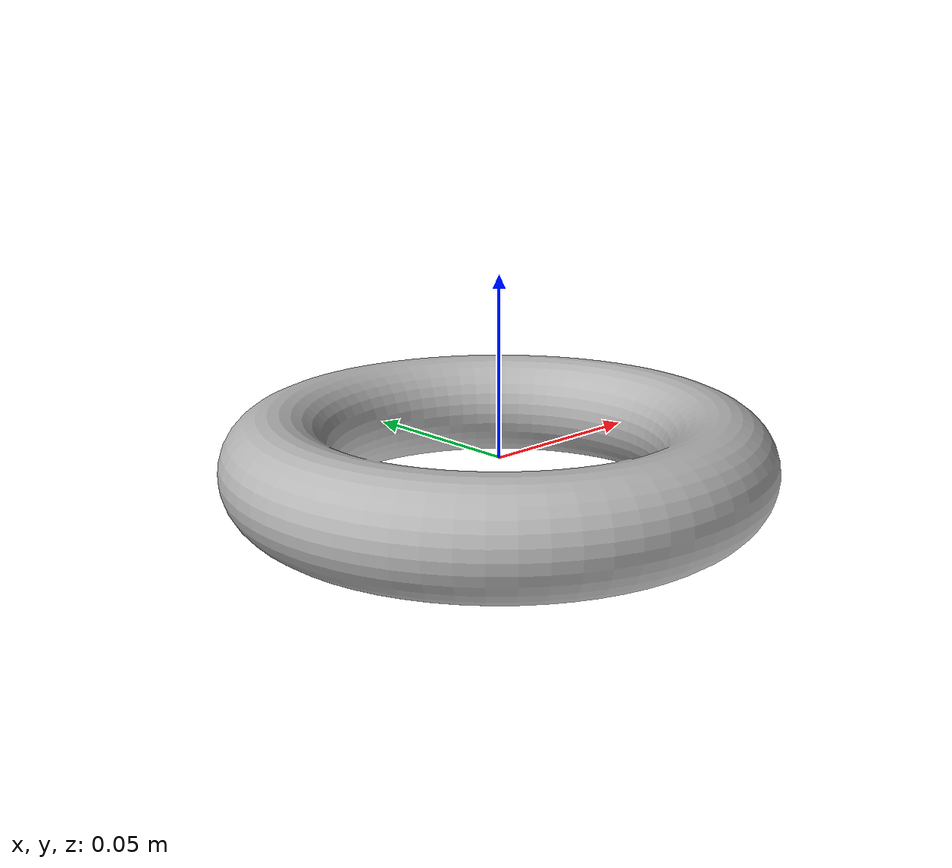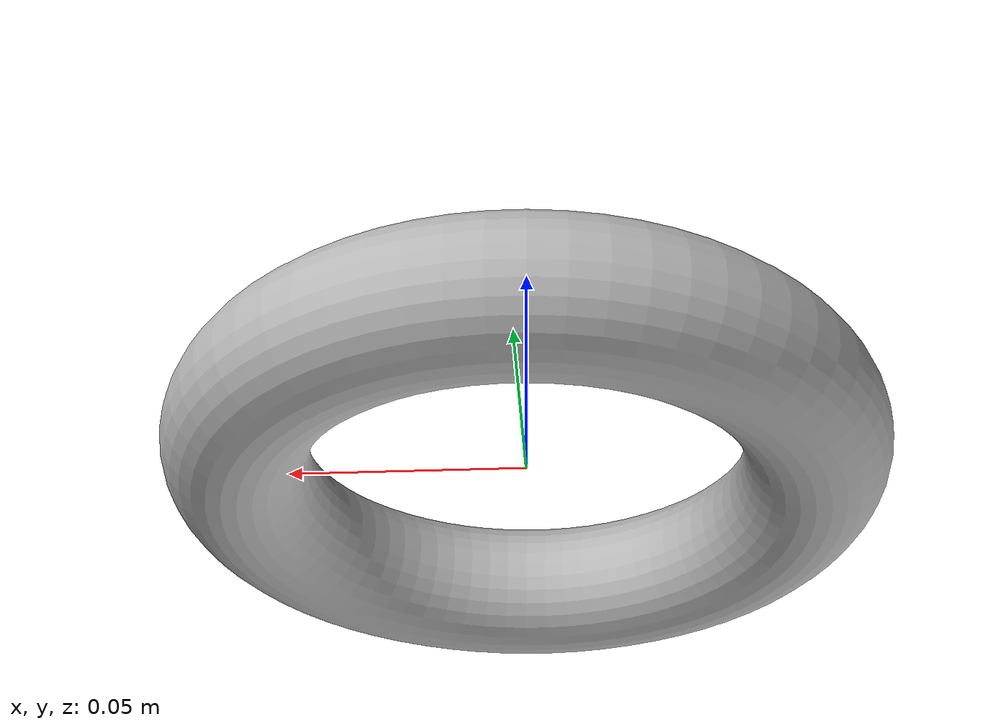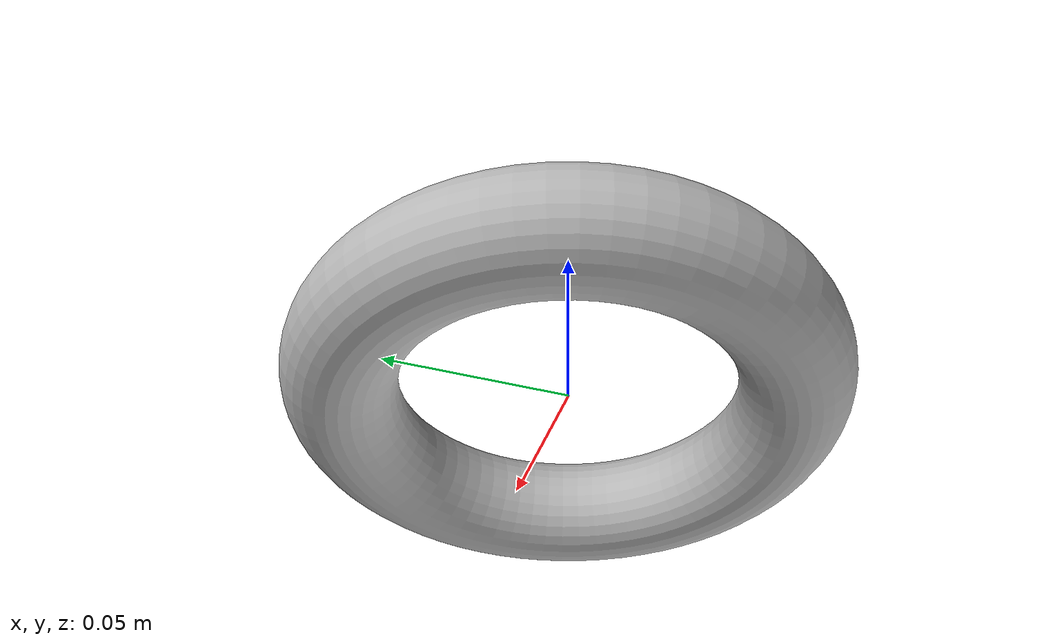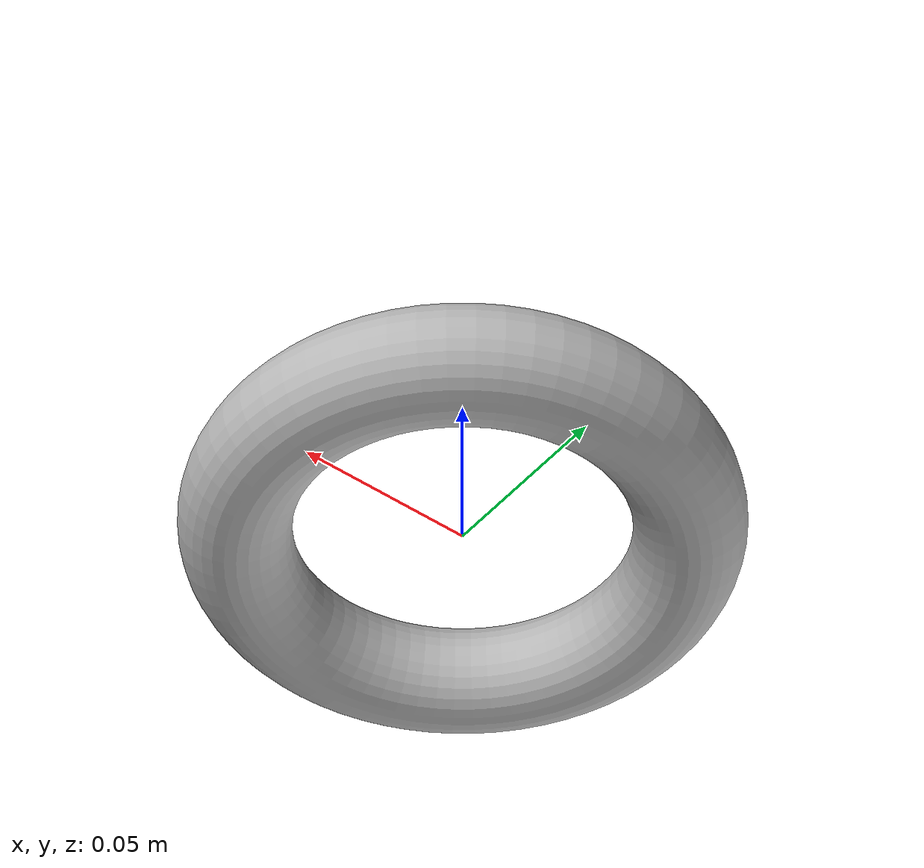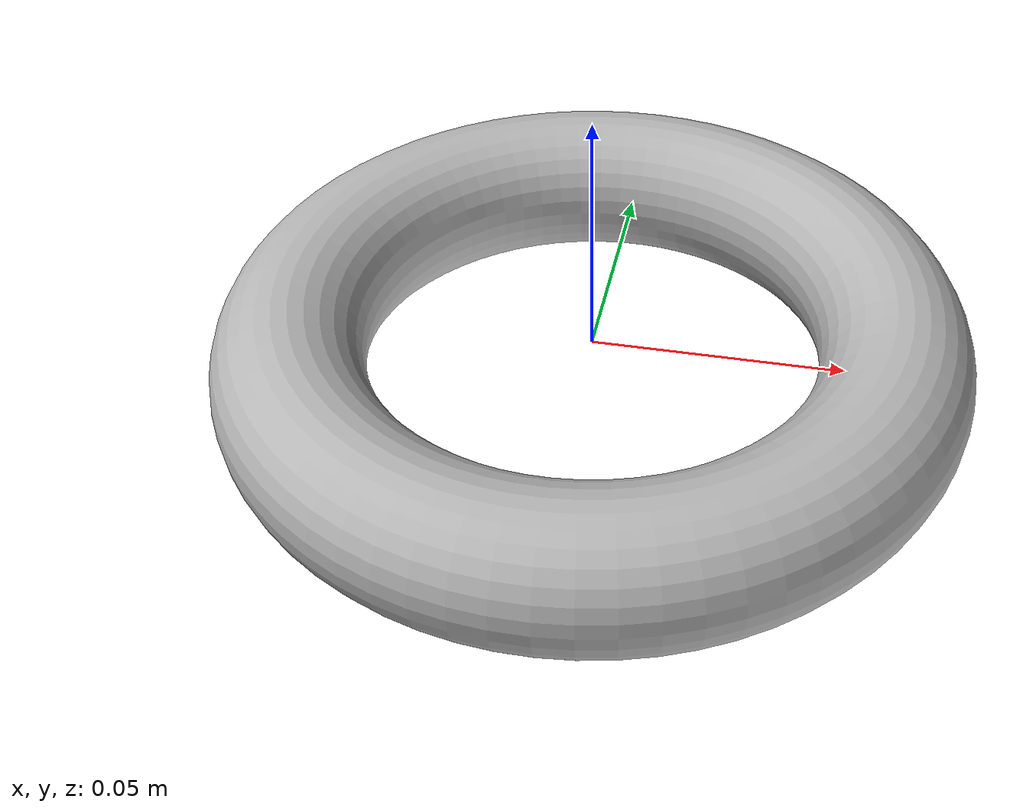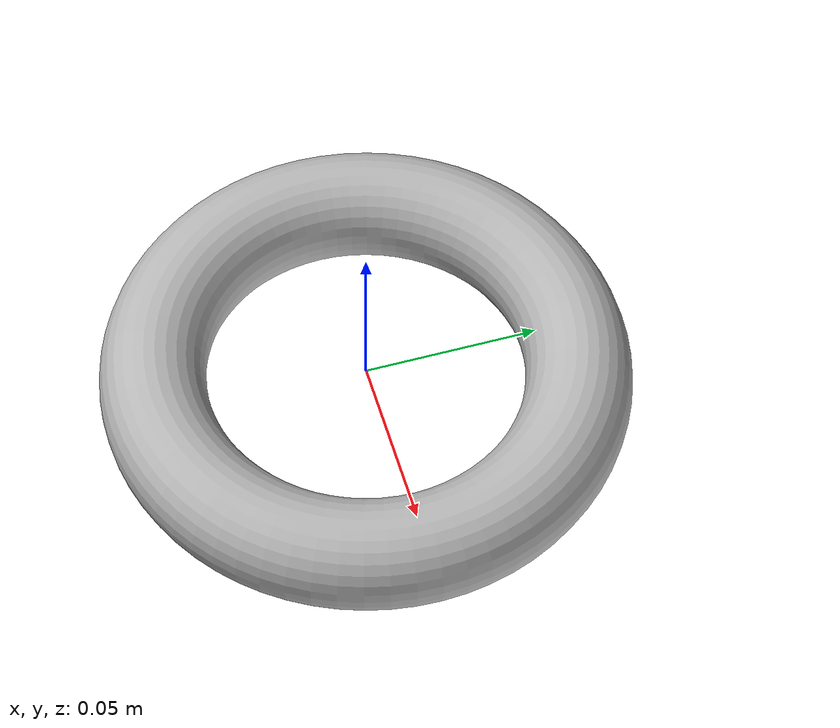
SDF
<?xml version="1.0" ?>
<sdf version="1.6">
  <model name="toroid">
    <static>true</static>
    <link name="link">
      <visual name="visual">
        <geometry>
          <mesh>
            <uri>file:///home/ridhima/workspaces/surge/src/arena/models/toroid/meshes/toroid.stl</uri>
            <scale>1.5 1.5 1.5</scale>
          </mesh>
        </geometry>
      </visual>
      <collision name="collision">
        <geometry>
          <mesh>
            <uri>file:///home/ridhima/workspaces/surge/src/arena/models/toroid/meshes/toroid.stl</uri>
            <scale>1.5 1.5 1.5</scale>
          </mesh>
        </geometry>
      </collision>
    </link>
  </model>
</sdf>
